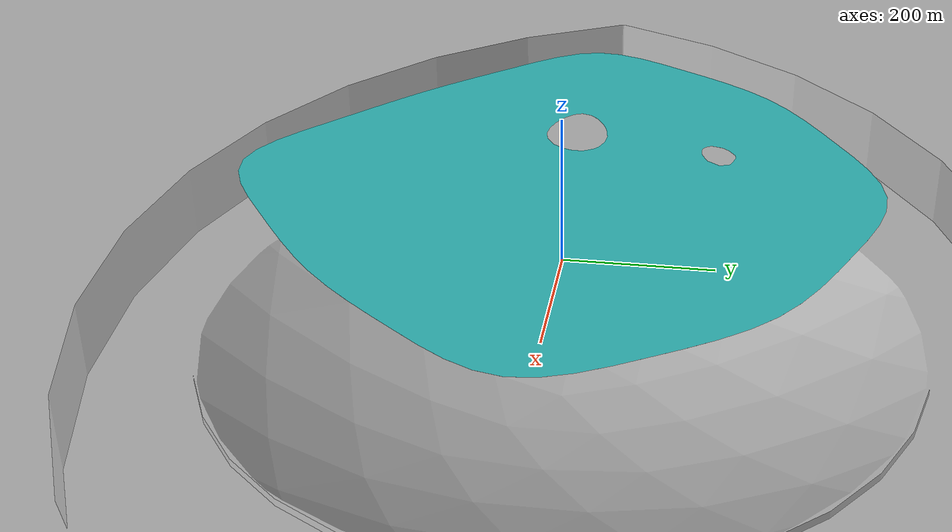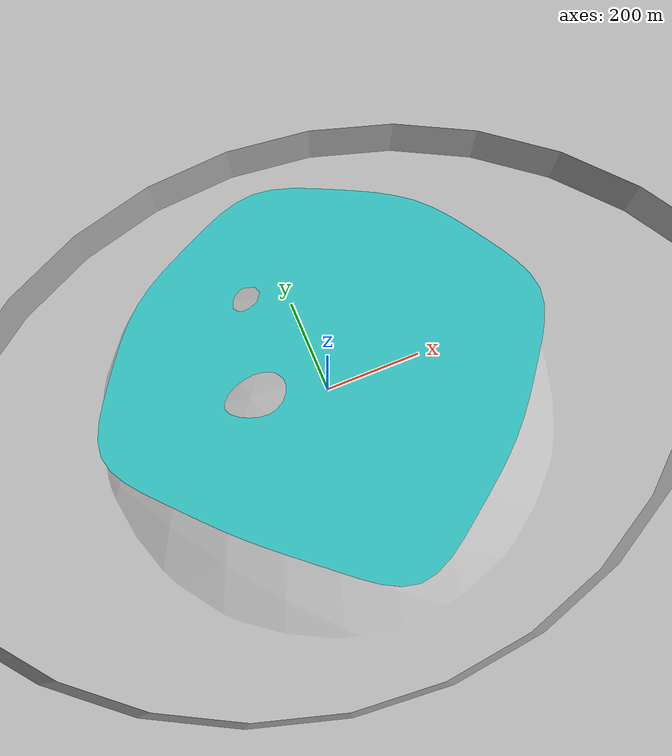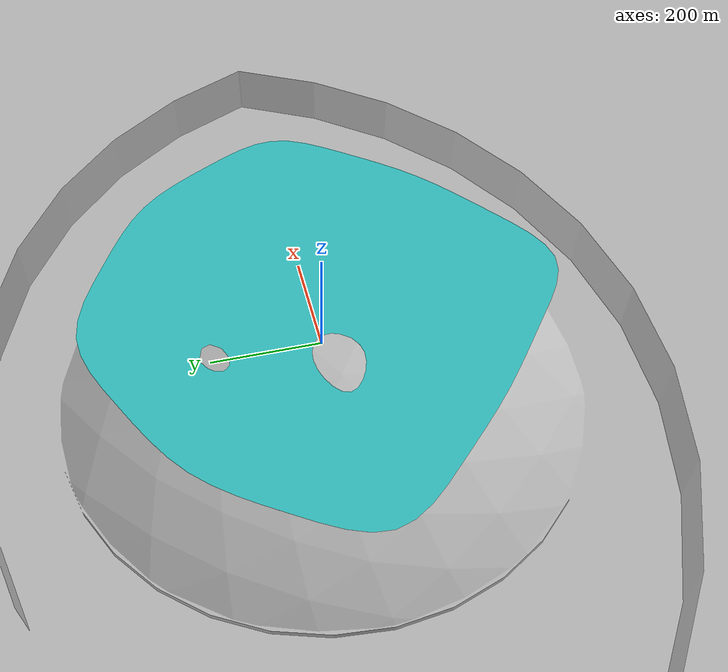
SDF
<?xml version="1.0" ?>
<sdf version="1.5">
  <world name="transdec">
    <physics name="default_physics" default="true" type="ode">
      <max_step_size>0.002</max_step_size>
      <real_time_factor>1</real_time_factor>
      <real_time_update_rate>500</real_time_update_rate>
      <ode>
        <solver>
          <type>quick</type>
          <iters>50</iters>
          <sor>0.5</sor>
        </solver>
      </ode>
    </physics>
    <scene>
      <ambient>0.01 0.01 0.01 1.0</ambient>
      <sky>
        <clouds>
          <speed>12</speed>
        </clouds>
      </sky>
      <shadows>1</shadows>
    </scene>

    <!-- Global light source -->
    <include>
      <uri>model://sun</uri>
    </include>
    <include>
      <uri>model://transdec</uri>
      <pose>0 0 0 0 0 0</pose>
    </include>

    <plugin name="underwater_world" filename="libuuv_underwater_current_ros_plugin.so">
      <namespace>hydrodynamics</namespace>
      <constant_current>
        <topic>current_velocity</topic>
        <velocity>
          <mean>0</mean>
          <min>0</min>
          <max>5</max>
          <mu>0.0</mu>
          <noiseAmp>0.0</noiseAmp>
        </velocity>

        <direction>
          <mean>0</mean>
          <min>-1.5707963267948966</min>
          <max>1.5707963267948966</max>
          <mu>0.0</mu>
          <noiseAmp>0.0</noiseAmp>
        </direction>
      </constant_current>
    </plugin>

  </world>
</sdf>

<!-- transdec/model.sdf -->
<sdf version="1.5">

<model name="transdec">
  <static>true</static>
  <link name="transdec_link">

  <visual name="surface">
      <pose>0 0 120 0 0 0</pose>
      <geometry>
          <mesh><uri>model://lake/meshes/WaterSurface.dae</uri><scale>1 1 1</scale></mesh>
      </geometry>
      <material>
        <script>
          <uri>file://Media/materials/scripts/water.material</uri>
          <name>UUVSimulator/StaticTurquoiseWater</name>
        </script>
      </material>
  </visual>

  <visual name="transdec">
    <pose>0 0 0 0 0 0</pose>
    <geometry>
      <mesh><uri>model://transdec/transdec.dae</uri><scale>10 10 10</scale></mesh>
    </geometry>
    <material>
      <script>
        <uri>model://ocean/materials/scripts</uri>
        <uri>model://ocean/materials/textures</uri>
        <name>Sand</name>
      </script>
    </material>
  </visual>

  <collision name="transdec">
    <pose>0 0 0 0 0 0</pose>
    <geometry>
      <mesh><uri>model://transdec/transdec.dae</uri><scale>10 10 10</scale></mesh>
    </geometry>
  </collision>

  </link>
</model>
</sdf>
